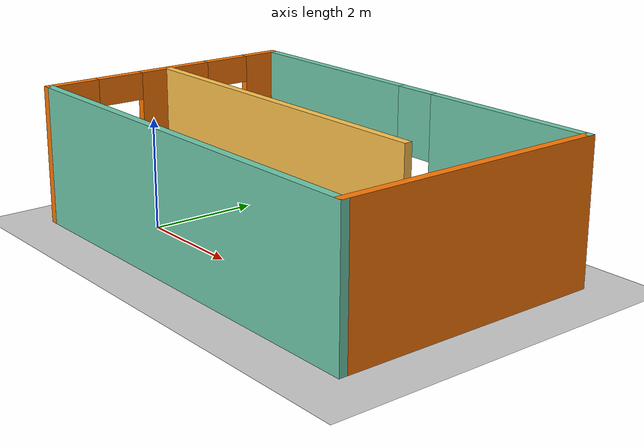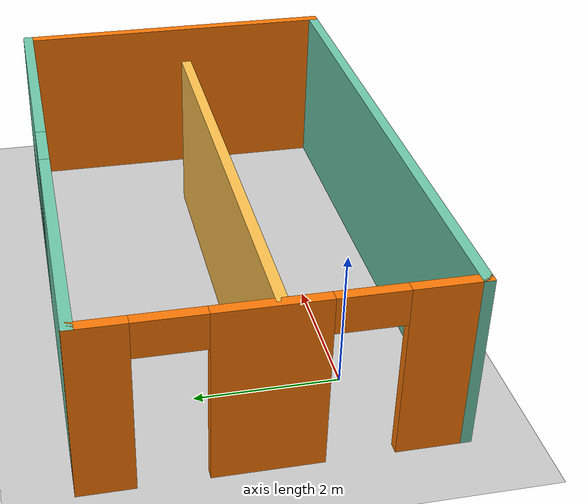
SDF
<sdf version="1.7">
 <world name="default">
  <light name="sun" type="directional">
   <pose>0 0 10 0 -0 0</pose>
   <diffuse>0.8 0.8 0.8 1</diffuse>
   <specular>0.2 0.2 0.2 1</specular>
   <attenuation>
    <range>1000</range>
    <constant>0.9</constant>
    <linear>0.01</linear>
    <quadratic>0.001</quadratic>
   </attenuation>
   <direction>-0.5 0.1 -0.9</direction>
   <spot><inner_angle>0</inner_angle><outer_angle>0</outer_angle><falloff>0</falloff></spot>
  </light>
  <model name="ground_plane">
   <static>1</static>
   <link name="link">
    <collision name="collision">
     <geometry><plane><normal>0 0 1</normal><size>100 100</size></plane></geometry>
     <surface><friction><ode><mu>100</mu><mu2>50</mu2></ode></friction></surface>
    </collision>
    <visual name="visual">
     <cast_shadows>0</cast_shadows>
     <geometry><plane><normal>0 0 1</normal><size>100 100</size></plane></geometry>
     <material>
      <script><uri>file://media/materials/scripts/gazebo.material</uri><name>Gazebo/Grey</name></script>
     </material>
    </visual>
   </link>
  </model>
  <gravity>0 0 -9.8</gravity>
  <magnetic_field>6e-06 2.3e-05 -4.2e-05</magnetic_field>
  <atmosphere type="adiabatic"/>
  <physics type="ode">
   <max_step_size>0.001</max_step_size>
   <real_time_factor>1</real_time_factor>
   <real_time_update_rate>1000</real_time_update_rate>
  </physics>
  <scene><ambient>0.4 0.4 0.4 1</ambient><background>0.7 0.7 0.7 1</background><shadows>1</shadows></scene>
  <spherical_coordinates>
   <surface_model>EARTH_WGS84</surface_model>
   <latitude_deg>0</latitude_deg>
   <longitude_deg>0</longitude_deg>
   <elevation>0</elevation>
   <heading_deg>0</heading_deg>
  </spherical_coordinates>
  <model name="small_room">
   <pose>2.54087 1.19298 0 0 -0 0</pose>
   <link name="Wall_0">
    <pose>-3.925 0 0 0 -0 1.5708</pose>
    <visual name="Wall_0_Visual_0">
     <pose>-1.99821 0 1.25 0 -0 0</pose>
     <geometry><box><size>1.00359 0.15 2.5</size></box></geometry>
     <material>
      <script><uri>file://media/materials/scripts/gazebo.material</uri><name>Gazebo/Grey</name></script>
      <ambient>0.996078 0.47451 0.0196078 1</ambient>
     </material>
     <meta><layer>0</layer></meta>
    </visual>
    <collision name="Wall_0_Collision_0">
     <geometry><box><size>1.00359 0.15 2.5</size></box></geometry>
     <pose>-1.99821 0 1.25 0 -0 0</pose>
    </collision>
    <visual name="Wall_0_Visual_1">
     <pose>0.125422 0 1.25 0 -0 0</pose>
     <geometry><box><size>1.44367 0.15 2.5</size></box></geometry>
     <material>
      <script><uri>file://media/materials/scripts/gazebo.material</uri><name>Gazebo/Grey</name></script>
      <ambient>0.996078 0.47451 0.0196078 1</ambient>
     </material>
     <meta><layer>0</layer></meta>
    </visual>
    <collision name="Wall_0_Collision_1">
     <geometry><box><size>1.44367 0.15 2.5</size></box></geometry>
     <pose>0.125422 0 1.25 0 -0 0</pose>
    </collision>
    <visual name="Wall_0_Visual_2">
     <pose>2.12363 0 1.25 0 -0 0</pose>
     <geometry><box><size>0.752744 0.15 2.5</size></box></geometry>
     <material>
      <script><uri>file://media/materials/scripts/gazebo.material</uri><name>Gazebo/Grey</name></script>
      <ambient>0.996078 0.47451 0.0196078 1</ambient>
     </material>
     <meta><layer>0</layer></meta>
    </visual>
    <collision name="Wall_0_Collision_2">
     <geometry><box><size>0.752744 0.15 2.5</size></box></geometry>
     <pose>2.12363 0 1.25 0 -0 0</pose>
    </collision>
    <visual name="Wall_0_Visual_3">
     <pose>-1.04641 0 2.25 0 -0 0</pose>
     <geometry><box><size>0.9 0.15 0.5</size></box></geometry>
     <material>
      <script><uri>file://media/materials/scripts/gazebo.material</uri><name>Gazebo/Grey</name></script>
      <ambient>0.996078 0.47451 0.0196078 1</ambient>
     </material>
     <meta><layer>0</layer></meta>
    </visual>
    <collision name="Wall_0_Collision_3">
     <geometry><box><size>0.9 0.15 0.5</size></box></geometry>
     <pose>-1.04641 0 2.25 0 -0 0</pose>
    </collision>
    <visual name="Wall_0_Visual_4">
     <pose>1.29726 0 2.25 0 -0 0</pose>
     <geometry><box><size>0.9 0.15 0.5</size></box></geometry>
     <material>
      <script><uri>file://media/materials/scripts/gazebo.material</uri><name>Gazebo/Grey</name></script>
      <ambient>0.996078 0.47451 0.0196078 1</ambient>
     </material>
     <meta><layer>0</layer></meta>
    </visual>
    <collision name="Wall_0_Collision_4">
     <geometry><box><size>0.9 0.15 0.5</size></box></geometry>
     <pose>1.29726 0 2.25 0 -0 0</pose>
    </collision>
   </link>
   <link name="Wall_1">
    <pose>0 2.425 0 0 -0 0</pose>
    <visual name="Wall_1_Visual_0">
     <pose>-2.08664 0 1.25 0 -0 0</pose>
     <geometry><box><size>3.82672 0.15 2.5</size></box></geometry>
     <material>
      <script><uri>file://media/materials/scripts/gazebo.material</uri><name>Gazebo/Grey</name></script>
      <ambient>0.435294 0.796078 0.67451 1</ambient>
     </material>
     <meta><layer>0</layer></meta>
    </visual>
    <collision name="Wall_1_Collision_0">
     <geometry><box><size>3.82672 0.15 2.5</size></box></geometry>
     <pose>-2.08664 0 1.25 0 -0 0</pose>
    </collision>
    <visual name="Wall_1_Visual_1">
     <pose>1.91336 0 0.25 0 -0 0</pose>
     <geometry><box><size>4.17328 0.15 0.5</size></box></geometry>
     <material>
      <script><uri>file://media/materials/scripts/gazebo.material</uri><name>Gazebo/Grey</name></script>
      <ambient>0.435294 0.796078 0.67451 1</ambient>
     </material>
     <meta><layer>0</layer></meta>
    </visual>
    <collision name="Wall_1_Collision_1">
     <geometry><box><size>4.17328 0.15 0.5</size></box></geometry>
     <pose>1.91336 0 0.25 0 -0 0</pose>
    </collision>
    <visual name="Wall_1_Visual_2">
     <pose>2.31336 0 1.5 0 -0 0</pose>
     <geometry><box><size>3.37328 0.15 2</size></box></geometry>
     <material>
      <script><uri>file://media/materials/scripts/gazebo.material</uri><name>Gazebo/Grey</name></script>
      <ambient>0.435294 0.796078 0.67451 1</ambient>
     </material>
     <meta><layer>0</layer></meta>
    </visual>
    <collision name="Wall_1_Collision_2">
     <geometry><box><size>3.37328 0.15 2</size></box></geometry>
     <pose>2.31336 0 1.5 0 -0 0</pose>
    </collision>
    <visual name="Wall_1_Visual_3">
     <pose>0.22672 0 1.9 0 -0 0</pose>
     <geometry><box><size>0.8 0.15 1.2</size></box></geometry>
     <material>
      <script><uri>file://media/materials/scripts/gazebo.material</uri><name>Gazebo/Grey</name></script>
      <ambient>0.435294 0.796078 0.67451 1</ambient>
     </material>
     <meta><layer>0</layer></meta>
    </visual>
    <collision name="Wall_1_Collision_3">
     <geometry><box><size>0.8 0.15 1.2</size></box></geometry>
     <pose>0.22672 0 1.9 0 -0 0</pose>
    </collision>
   </link>
   <link name="Wall_2">
    <collision name="Wall_2_Collision">
     <geometry><box><size>5 0.15 2.5</size></box></geometry>
     <pose>0 0 1.25 0 -0 0</pose>
    </collision>
    <visual name="Wall_2_Visual">
     <pose>0 0 1.25 0 -0 0</pose>
     <geometry><box><size>5 0.15 2.5</size></box></geometry>
     <material>
      <script><uri>file://media/materials/scripts/gazebo.material</uri><name>Gazebo/Grey</name></script>
      <ambient>0.996078 0.47451 0.0196078 1</ambient>
     </material>
     <meta><layer>0</layer></meta>
    </visual>
    <pose>3.925 0 0 0 -0 -1.5708</pose>
   </link>
   <link name="Wall_3">
    <collision name="Wall_3_Collision">
     <geometry><box><size>8 0.15 2.5</size></box></geometry>
     <pose>0 0 1.25 0 -0 0</pose>
    </collision>
    <visual name="Wall_3_Visual">
     <pose>0 0 1.25 0 -0 0</pose>
     <geometry><box><size>8 0.15 2.5</size></box></geometry>
     <material>
      <script><uri>file://media/materials/scripts/gazebo.material</uri><name>Gazebo/Grey</name></script>
      <ambient>0.435294 0.796078 0.67451 1</ambient>
     </material>
     <meta><layer>0</layer></meta>
    </visual>
    <pose>0 -2.425 0 0 -0 3.14159</pose>
   </link>
   <link name="Wall_5">
    <collision name="Wall_5_Collision">
     <geometry><box><size>6.5 0.15 2.5</size></box></geometry>
     <pose>0 0 1.25 0 -0 0</pose>
    </collision>
    <visual name="Wall_5_Visual">
     <pose>0 0 1.25 0 -0 0</pose>
     <geometry><box><size>6.5 0.15 2.5</size></box></geometry>
     <material>
      <script><uri>file://media/materials/scripts/gazebo.material</uri><name>Gazebo/Grey</name></script>
      <ambient>1 0.764706 0.305882 1</ambient>
     </material>
     <meta><layer>0</layer></meta>
    </visual>
    <pose>-0.673465 0.002992 0 0 -0 0</pose>
   </link>
   <static>1</static>
  </model>
 </world>
</sdf>
